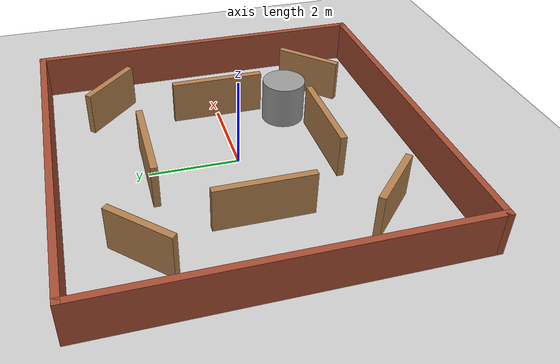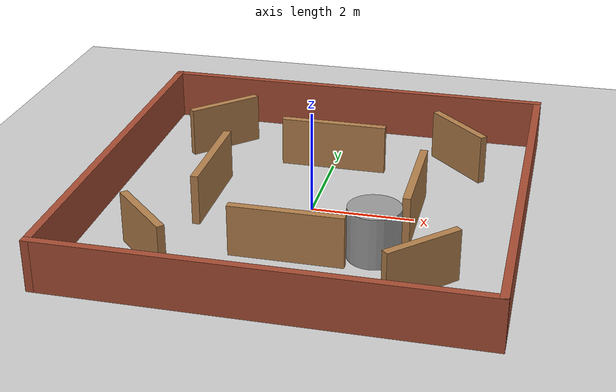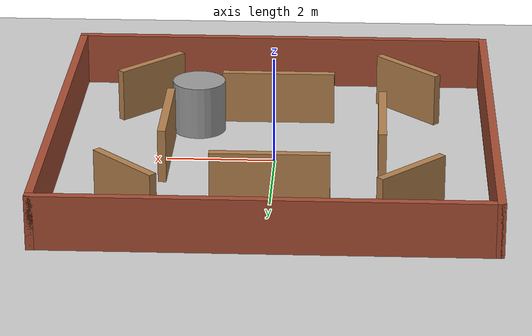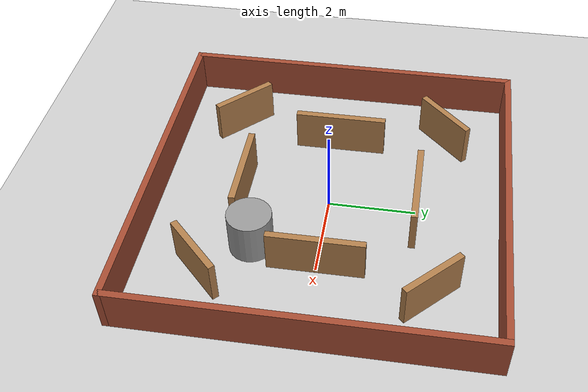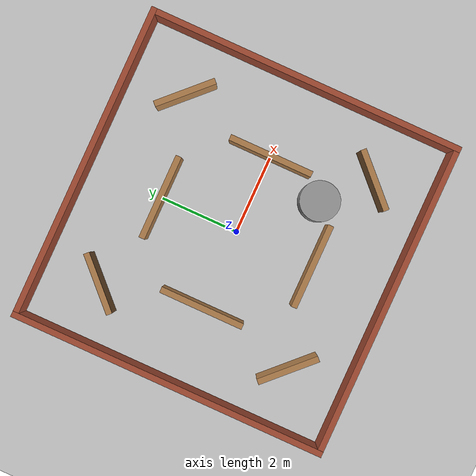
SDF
<sdf version="1.7">
 <world name="default">
  <light name="sun" type="directional">
   <pose>0 0 10 0 -0 0</pose>
   <diffuse>0.8 0.8 0.8 1</diffuse>
   <specular>0.2 0.2 0.2 1</specular>
   <attenuation>
    <range>1000</range>
    <constant>0.9</constant>
    <linear>0.01</linear>
    <quadratic>0.001</quadratic>
   </attenuation>
   <direction>-0.5 0.1 -0.9</direction>
   <spot><inner_angle>0</inner_angle><outer_angle>0</outer_angle><falloff>0</falloff></spot>
  </light>
  <model name="ground_plane">
   <static>1</static>
   <link name="link">
    <collision name="collision">
     <geometry><plane><normal>0 0 1</normal><size>100 100</size></plane></geometry>
     <surface>
      <contact><collide_bitmask>65535</collide_bitmask></contact>
      <friction><ode><mu>100</mu><mu2>50</mu2></ode></friction>
     </surface>
    </collision>
    <visual name="visual">
     <cast_shadows>0</cast_shadows>
     <geometry><plane><normal>0 0 1</normal><size>100 100</size></plane></geometry>
     <material>
      <script><uri>file://media/materials/scripts/gazebo.material</uri><name>Gazebo/Grey</name></script>
     </material>
    </visual>
   </link>
  </model>
  <gravity>0 0 -9.8</gravity>
  <magnetic_field>6e-06 2.3e-05 -4.2e-05</magnetic_field>
  <atmosphere type="adiabatic"/>
  <physics type="ode">
   <max_step_size>0.001</max_step_size>
   <real_time_factor>1</real_time_factor>
   <real_time_update_rate>1000</real_time_update_rate>
  </physics>
  <scene><ambient>0.4 0.4 0.4 1</ambient><background>0.7 0.7 0.7 1</background><shadows>1</shadows></scene>
  <spherical_coordinates>
   <surface_model>EARTH_WGS84</surface_model>
   <latitude_deg>0</latitude_deg>
   <longitude_deg>0</longitude_deg>
   <elevation>0</elevation>
   <heading_deg>0</heading_deg>
  </spherical_coordinates>
  <model name="map_1">
   <link name="Wall_0">
    <collision name="Wall_0_Collision">
     <geometry><box><size>8.15 0.15 1</size></box></geometry>
     <pose>0 0 0.5 0 -0 0</pose>
    </collision>
    <visual name="Wall_0_Visual">
     <pose>0 0 0.5 0 -0 0</pose>
     <geometry><box><size>8.15 0.15 1</size></box></geometry>
     <material>
      <script><uri>file://media/materials/scripts/gazebo.material</uri><name>Gazebo/Bricks</name></script>
      <ambient>1 1 1 1</ambient>
     </material>
     <meta><layer>0</layer></meta>
    </visual>
    <pose>-4 0 0 0 -0 1.5708</pose>
   </link>
   <link name="Wall_1">
    <collision name="Wall_1_Collision">
     <geometry><box><size>8.15 0.15 1</size></box></geometry>
     <pose>0 0 0.5 0 -0 0</pose>
    </collision>
    <visual name="Wall_1_Visual">
     <pose>0 0 0.5 0 -0 0</pose>
     <geometry><box><size>8.15 0.15 1</size></box></geometry>
     <material>
      <script><uri>file://media/materials/scripts/gazebo.material</uri><name>Gazebo/Bricks</name></script>
      <ambient>1 1 1 1</ambient>
     </material>
     <meta><layer>0</layer></meta>
    </visual>
    <pose>0 4 0 0 -0 0</pose>
   </link>
   <link name="Wall_11">
    <collision name="Wall_11_Collision">
     <geometry><box><size>1.56421 0.15 1</size></box></geometry>
     <pose>0 0 0.5 0 -0 0</pose>
    </collision>
    <visual name="Wall_11_Visual">
     <pose>0 0 0.5 0 -0 0</pose>
     <geometry><box><size>1.56421 0.15 1</size></box></geometry>
     <material>
      <script><uri>file://media/materials/scripts/gazebo.material</uri><name>Gazebo/Wood</name></script>
      <ambient>1 1 1 1</ambient>
     </material>
     <meta><layer>0</layer></meta>
    </visual>
    <pose>2.523 2.5 0 0 -0 2.35619</pose>
   </link>
   <link name="Wall_13">
    <collision name="Wall_13_Collision">
     <geometry><box><size>2.15 0.15 1</size></box></geometry>
     <pose>0 0 0.5 0 -0 0</pose>
    </collision>
    <visual name="Wall_13_Visual">
     <pose>0 0 0.5 0 -0 0</pose>
     <geometry><box><size>2.15 0.15 1</size></box></geometry>
     <material>
      <script><uri>file://media/materials/scripts/gazebo.material</uri><name>Gazebo/Wood</name></script>
      <ambient>1 1 1 1</ambient>
     </material>
     <meta><layer>0</layer></meta>
    </visual>
    <pose>-2 0 0 0 -0 -1.5708</pose>
   </link>
   <link name="Wall_15">
    <collision name="Wall_15_Collision">
     <geometry><box><size>2.15 0.15 1</size></box></geometry>
     <pose>0 0 0.5 0 -0 0</pose>
    </collision>
    <visual name="Wall_15_Visual">
     <pose>0 0 0.5 0 -0 0</pose>
     <geometry><box><size>2.15 0.15 1</size></box></geometry>
     <material>
      <script><uri>file://media/materials/scripts/gazebo.material</uri><name>Gazebo/Wood</name></script>
      <ambient>1 1 1 1</ambient>
     </material>
     <meta><layer>0</layer></meta>
    </visual>
    <pose>0 -2 0 0 -0 0</pose>
   </link>
   <link name="Wall_17">
    <collision name="Wall_17_Collision">
     <geometry><box><size>2.15 0.15 1</size></box></geometry>
     <pose>0 0 0.5 0 -0 0</pose>
    </collision>
    <visual name="Wall_17_Visual">
     <pose>0 0 0.5 0 -0 0</pose>
     <geometry><box><size>2.15 0.15 1</size></box></geometry>
     <material>
      <script><uri>file://media/materials/scripts/gazebo.material</uri><name>Gazebo/Wood</name></script>
      <ambient>1 1 1 1</ambient>
     </material>
     <meta><layer>0</layer></meta>
    </visual>
    <pose>2 0 0 0 -0 1.5708</pose>
   </link>
   <link name="Wall_19">
    <collision name="Wall_19_Collision">
     <geometry><box><size>2.15 0.15 1</size></box></geometry>
     <pose>0 0 0.5 0 -0 0</pose>
    </collision>
    <visual name="Wall_19_Visual">
     <pose>0 0 0.5 0 -0 0</pose>
     <geometry><box><size>2.15 0.15 1</size></box></geometry>
     <material>
      <script><uri>file://media/materials/scripts/gazebo.material</uri><name>Gazebo/Wood</name></script>
      <ambient>1 1 1 1</ambient>
     </material>
     <meta><layer>0</layer></meta>
    </visual>
    <pose>0 2 0 0 -0 3.14159</pose>
   </link>
   <link name="Wall_2">
    <collision name="Wall_2_Collision">
     <geometry><box><size>8.15 0.15 1</size></box></geometry>
     <pose>0 0 0.5 0 -0 0</pose>
    </collision>
    <visual name="Wall_2_Visual">
     <pose>0 0 0.5 0 -0 0</pose>
     <geometry><box><size>8.15 0.15 1</size></box></geometry>
     <material>
      <script><uri>file://media/materials/scripts/gazebo.material</uri><name>Gazebo/Bricks</name></script>
      <ambient>1 1 1 1</ambient>
     </material>
     <meta><layer>0</layer></meta>
    </visual>
    <pose>4 0 0 0 -0 -1.5708</pose>
   </link>
   <link name="Wall_3">
    <collision name="Wall_3_Collision">
     <geometry><box><size>8.15 0.15 1</size></box></geometry>
     <pose>0 0 0.5 0 -0 0</pose>
    </collision>
    <visual name="Wall_3_Visual">
     <pose>0 0 0.5 0 -0 0</pose>
     <geometry><box><size>8.15 0.15 1</size></box></geometry>
     <material>
      <script><uri>file://media/materials/scripts/gazebo.material</uri><name>Gazebo/Bricks</name></script>
      <ambient>1 1 1 1</ambient>
     </material>
     <meta><layer>0</layer></meta>
    </visual>
    <pose>0 -4 0 0 -0 3.14159</pose>
   </link>
   <link name="Wall_5">
    <collision name="Wall_5_Collision">
     <geometry><box><size>1.56421 0.15 1</size></box></geometry>
     <pose>0 0 0.5 0 -0 0</pose>
    </collision>
    <visual name="Wall_5_Visual">
     <pose>0 0 0.5 0 -0 0</pose>
     <geometry><box><size>1.56421 0.15 1</size></box></geometry>
     <material>
      <script><uri>file://media/materials/scripts/gazebo.material</uri><name>Gazebo/Wood</name></script>
      <ambient>1 1 1 1</ambient>
     </material>
     <meta><layer>0</layer></meta>
    </visual>
    <pose>-2.5 2.5 0 0 -0 -2.35619</pose>
   </link>
   <link name="Wall_7">
    <collision name="Wall_7_Collision">
     <geometry><box><size>1.56421 0.15 1</size></box></geometry>
     <pose>0 0 0.5 0 -0 0</pose>
    </collision>
    <visual name="Wall_7_Visual">
     <pose>0 0 0.5 0 -0 0</pose>
     <geometry><box><size>1.56421 0.15 1</size></box></geometry>
     <material>
      <script><uri>file://media/materials/scripts/gazebo.material</uri><name>Gazebo/Wood</name></script>
      <ambient>1 1 1 1</ambient>
     </material>
     <meta><layer>0</layer></meta>
    </visual>
    <pose>-2.5 -2.5 0 0 -0 -0.785398</pose>
   </link>
   <link name="Wall_9">
    <collision name="Wall_9_Collision">
     <geometry><box><size>1.56421 0.15 1</size></box></geometry>
     <pose>0 0 0.5 0 -0 0</pose>
    </collision>
    <visual name="Wall_9_Visual">
     <pose>0 0 0.5 0 -0 0</pose>
     <geometry><box><size>1.56421 0.15 1</size></box></geometry>
     <material>
      <script><uri>file://media/materials/scripts/gazebo.material</uri><name>Gazebo/Wood</name></script>
      <ambient>1 1 1 1</ambient>
     </material>
     <meta><layer>0</layer></meta>
    </visual>
    <pose>2.5 -2.5 0 0 -0 0.785398</pose>
   </link>
   <static>1</static>
  </model>
  <light name="user_point_light_0" type="point">
   <pose>-0.008315 0.303747 1 0 -0 0</pose>
   <diffuse>0.5 0.5 0.5 1</diffuse>
   <specular>0.1 0.1 0.1 1</specular>
   <attenuation>
    <range>20</range>
    <constant>0.5</constant>
    <linear>0.01</linear>
    <quadratic>0.001</quadratic>
   </attenuation>
   <cast_shadows>0</cast_shadows>
   <direction>0 0 -1</direction>
  </light>
  <model name="unit_cylinder">
   <pose>1.49996 -1.51623 0.499997 3e-06 4e-06 -0</pose>
   <link name="link">
    <inertial>
     <mass>1</mass>
     <inertia><ixx>0.145833</ixx><ixy>0</ixy><ixz>0</ixz><iyy>0.145833</iyy><iyz>0</iyz><izz>0.125</izz></inertia>
    </inertial>
    <collision name="collision">
     <geometry><cylinder><radius>0.5</radius><length>1</length></cylinder></geometry>
    </collision>
    <visual name="visual">
     <geometry><cylinder><radius>0.5</radius><length>1</length></cylinder></geometry>
     <material>
      <script><name>Gazebo/Grey</name><uri>file://media/materials/scripts/gazebo.material</uri></script>
     </material>
    </visual>
   </link>
  </model>
 </world>
</sdf>
